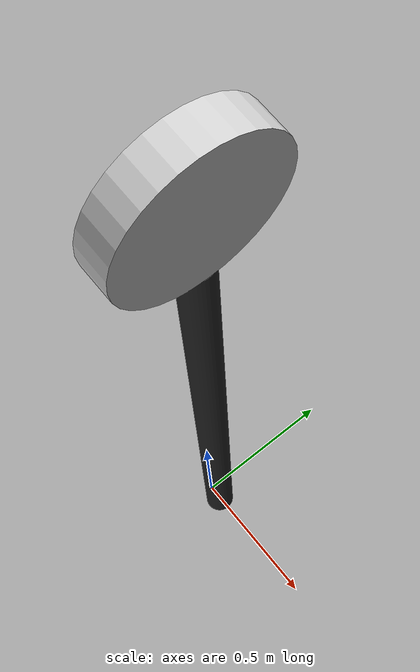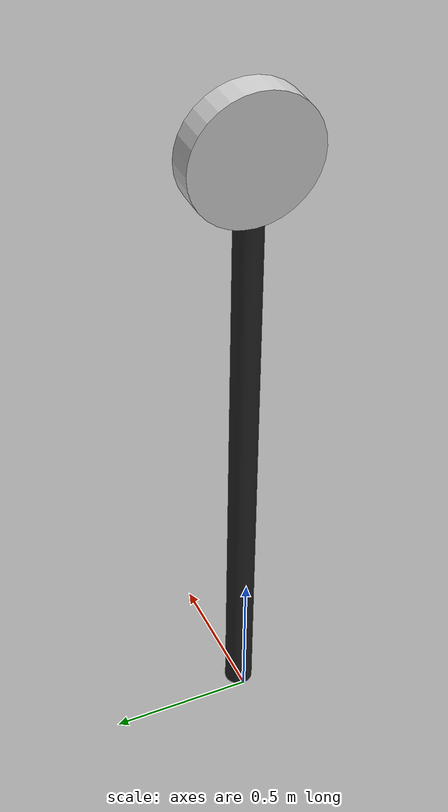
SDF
<?xml version="1.0"?>
<sdf version="1.7">
  <model name="Sign Parkyasak">
    <static>true</static>
    <link name="link">
      <pose>0 0 0 0 0 0</pose>

      <collision name="collision">
        <geometry>
          <mesh>
            <uri>model://sign_parkyasak/meshes/model.dae</uri>
            <scale>1 1 1</scale>
          </mesh>
        </geometry>
      </collision>

      <visual name="visual">
        <geometry>
          <mesh>
            <uri>model://sign_parkyasak/meshes/model.dae</uri>
            <scale>1 1 1</scale>
          </mesh>
        </geometry>
      </visual>

    </link>
  </model>
</sdf>
